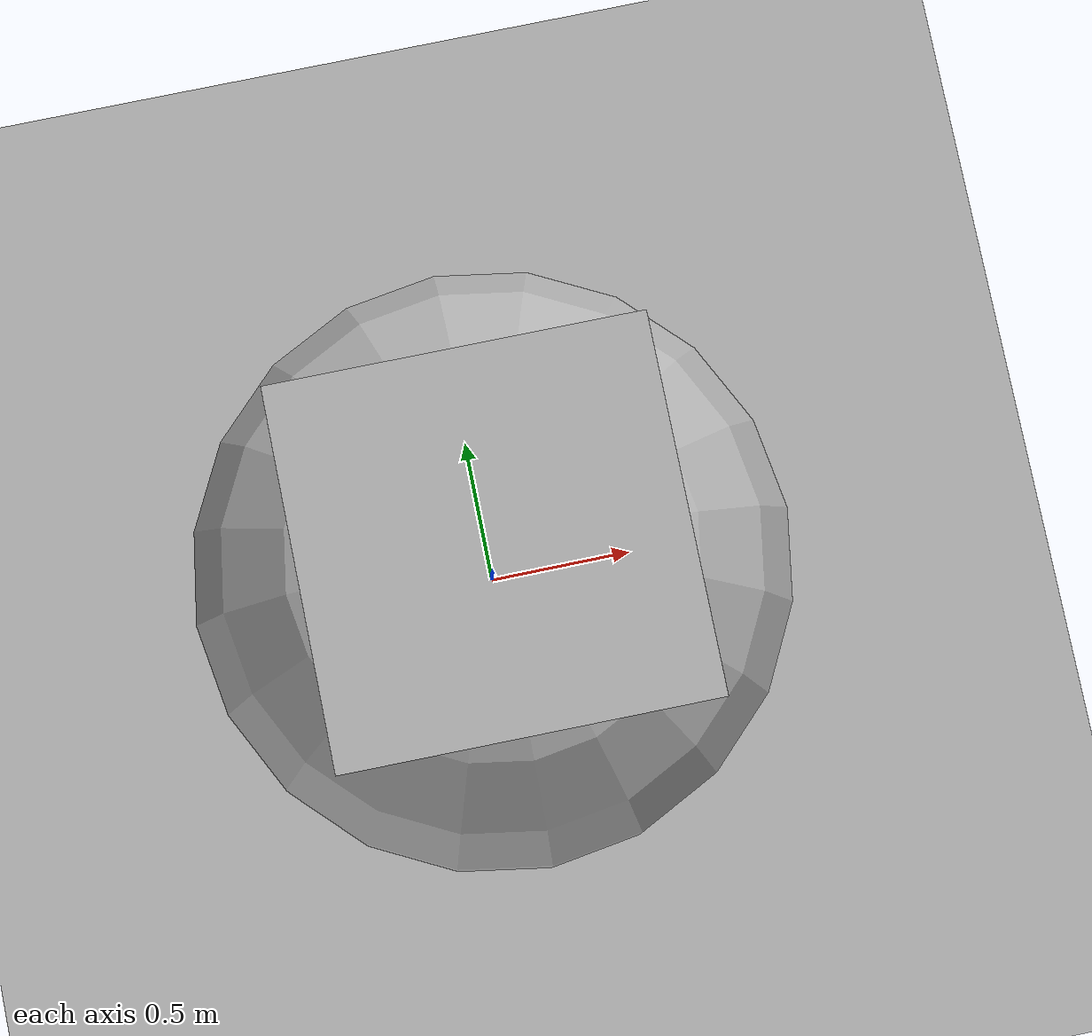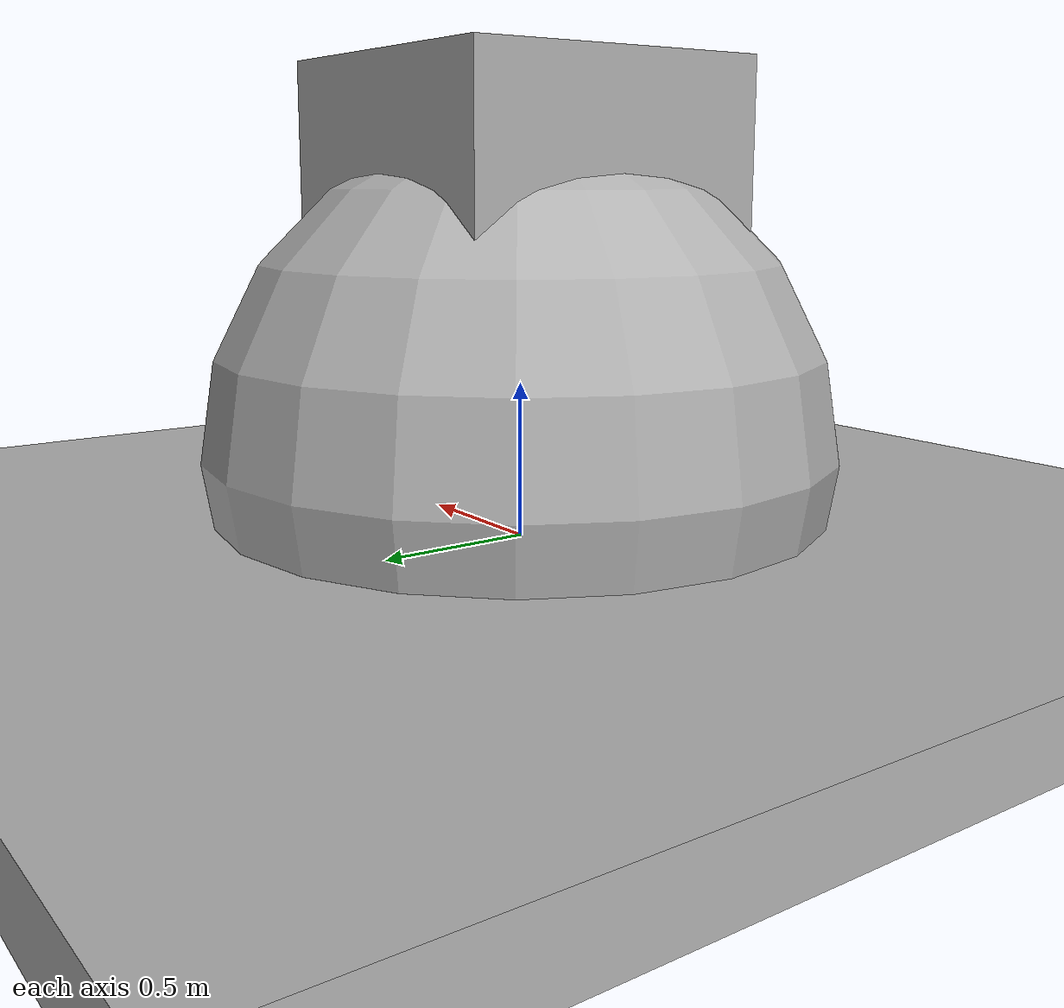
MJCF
<mujoco>
  <option gravity="0 0 -9.81" />
  <worldbody>
    <body name="object_2" pos="0 0 0">
      <geom type="box" size="5 5 0.1" rgba="0.7 0.7 0.7 1" friction="0.5 0.5 0.5" />
    </body>
    <body name="object_1" pos="0 0 1">
      <geom type="box" size="0.5 0.5 0.5" density="1" rgba="0.7 0.7 0.7 1" />
    </body>
    <body name="object_3" pos="0 0 -5">
      <geom type="plane" size="30 30 0.1" rgba="0.7 0.7 0.7 1" friction="1 1 1" />
    </body>
  <body name="test_block" pos="0.0 0.0 0.3"><geom type="sphere" size="1.0" rgba="0.7 0.7 0.7 1" /></body></worldbody>
</mujoco>
